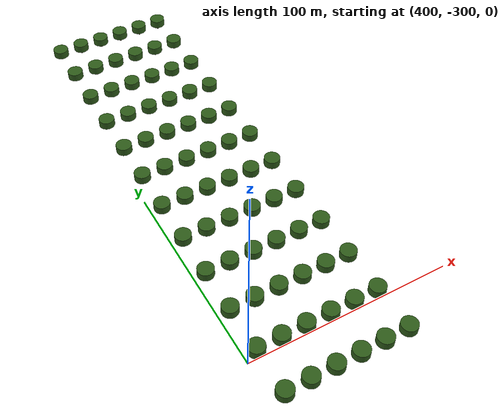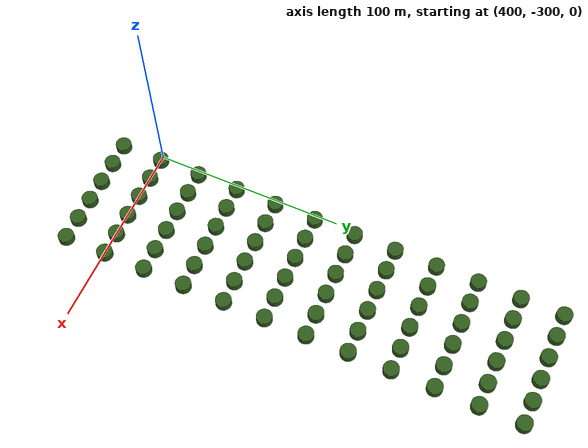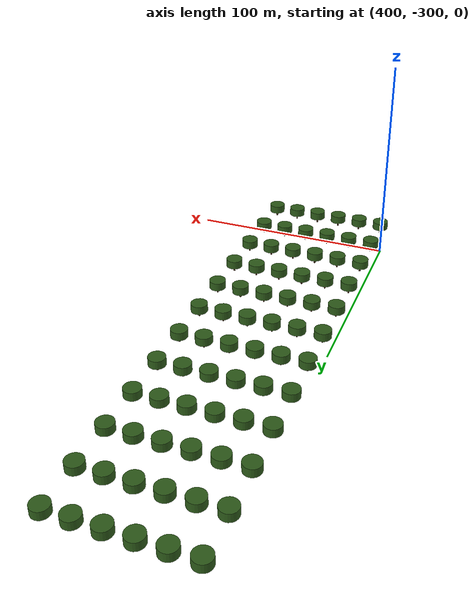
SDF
<sdf version="1.9">
 <world name="agriculture">
  <model name="orchard">
   <static>true</static>
   <link name="link">
    <visual name="trunk0_0_visual">
     <pose>405.0 -320.0 2.34224578950661 0 0 0</pose>
     <geometry><cylinder><radius>0.4</radius><length>4</length></cylinder></geometry>
     <material><ambient>0.3 0.19 0.1 1</ambient><diffuse>0.3 0.19 0.1 1</diffuse></material>
    </visual>
    <collision name="trunk0_0_collision">
     <pose>405.0 -320.0 2.34224578950661 0 0 0</pose>
     <geometry><cylinder><radius>0.4</radius><length>4</length></cylinder></geometry>
    </collision>
    <visual name="canopy0_0_visual">
     <pose>405.0 -320.0 5.34224578950661 0 0 0</pose>
     <geometry><cylinder><radius>4</radius><length>4</length></cylinder></geometry>
     <material><ambient>0.18 0.36 0.10 1</ambient><diffuse>0.18 0.36 0.10 1</diffuse></material>
    </visual>
    <visual name="trunk0_1_visual">
     <pose>405.0 -298.0 2.272279923001846 0 0 0</pose>
     <geometry><cylinder><radius>0.4</radius><length>4</length></cylinder></geometry>
     <material><ambient>0.3 0.19 0.1 1</ambient><diffuse>0.3 0.19 0.1 1</diffuse></material>
    </visual>
    <collision name="trunk0_1_collision">
     <pose>405.0 -298.0 2.272279923001846 0 0 0</pose>
     <geometry><cylinder><radius>0.4</radius><length>4</length></cylinder></geometry>
    </collision>
    <visual name="canopy0_1_visual">
     <pose>405.0 -298.0 5.272279923001846 0 0 0</pose>
     <geometry><cylinder><radius>4</radius><length>4</length></cylinder></geometry>
     <material><ambient>0.18 0.36 0.10 1</ambient><diffuse>0.18 0.36 0.10 1</diffuse></material>
    </visual>
    <visual name="trunk0_2_visual">
     <pose>405.0 -276.0 2.217995107475791 0 0 0</pose>
     <geometry><cylinder><radius>0.4</radius><length>4</length></cylinder></geometry>
     <material><ambient>0.3 0.19 0.1 1</ambient><diffuse>0.3 0.19 0.1 1</diffuse></material>
    </visual>
    <collision name="trunk0_2_collision">
     <pose>405.0 -276.0 2.217995107475791 0 0 0</pose>
     <geometry><cylinder><radius>0.4</radius><length>4</length></cylinder></geometry>
    </collision>
    <visual name="canopy0_2_visual">
     <pose>405.0 -276.0 5.217995107475791 0 0 0</pose>
     <geometry><cylinder><radius>4</radius><length>4</length></cylinder></geometry>
     <material><ambient>0.18 0.36 0.10 1</ambient><diffuse>0.18 0.36 0.10 1</diffuse></material>
    </visual>
    <visual name="trunk0_3_visual">
     <pose>405.0 -254.0 2.1807290892683113 0 0 0</pose>
     <geometry><cylinder><radius>0.4</radius><length>4</length></cylinder></geometry>
     <material><ambient>0.3 0.19 0.1 1</ambient><diffuse>0.3 0.19 0.1 1</diffuse></material>
    </visual>
    <collision name="trunk0_3_collision">
     <pose>405.0 -254.0 2.1807290892683113 0 0 0</pose>
     <geometry><cylinder><radius>0.4</radius><length>4</length></cylinder></geometry>
    </collision>
    <visual name="canopy0_3_visual">
     <pose>405.0 -254.0 5.180729089268311 0 0 0</pose>
     <geometry><cylinder><radius>4</radius><length>4</length></cylinder></geometry>
     <material><ambient>0.18 0.36 0.10 1</ambient><diffuse>0.18 0.36 0.10 1</diffuse></material>
    </visual>
    <visual name="trunk0_4_visual">
     <pose>405.0 -232.0 2.161400218731625 0 0 0</pose>
     <geometry><cylinder><radius>0.4</radius><length>4</length></cylinder></geometry>
     <material><ambient>0.3 0.19 0.1 1</ambient><diffuse>0.3 0.19 0.1 1</diffuse></material>
    </visual>
    <collision name="trunk0_4_collision">
     <pose>405.0 -232.0 2.161400218731625 0 0 0</pose>
     <geometry><cylinder><radius>0.4</radius><length>4</length></cylinder></geometry>
    </collision>
    <visual name="canopy0_4_visual">
     <pose>405.0 -232.0 5.161400218731624 0 0 0</pose>
     <geometry><cylinder><radius>4</radius><length>4</length></cylinder></geometry>
     <material><ambient>0.18 0.36 0.10 1</ambient><diffuse>0.18 0.36 0.10 1</diffuse></material>
    </visual>
    <visual name="trunk0_5_visual">
     <pose>405.0 -210.0 2.160484819227313 0 0 0</pose>
     <geometry><cylinder><radius>0.4</radius><length>4</length></cylinder></geometry>
     <material><ambient>0.3 0.19 0.1 1</ambient><diffuse>0.3 0.19 0.1 1</diffuse></material>
    </visual>
    <collision name="trunk0_5_collision">
     <pose>405.0 -210.0 2.160484819227313 0 0 0</pose>
     <geometry><cylinder><radius>0.4</radius><length>4</length></cylinder></geometry>
    </collision>
    <visual name="canopy0_5_visual">
     <pose>405.0 -210.0 5.160484819227313 0 0 0</pose>
     <geometry><cylinder><radius>4</radius><length>4</length></cylinder></geometry>
     <material><ambient>0.18 0.36 0.10 1</ambient><diffuse>0.18 0.36 0.10 1</diffuse></material>
    </visual>
    <visual name="trunk0_6_visual">
     <pose>405.0 -188.0 2.178005449040313 0 0 0</pose>
     <geometry><cylinder><radius>0.4</radius><length>4</length></cylinder></geometry>
     <material><ambient>0.3 0.19 0.1 1</ambient><diffuse>0.3 0.19 0.1 1</diffuse></material>
    </visual>
    <collision name="trunk0_6_collision">
     <pose>405.0 -188.0 2.178005449040313 0 0 0</pose>
     <geometry><cylinder><radius>0.4</radius><length>4</length></cylinder></geometry>
    </collision>
    <visual name="canopy0_6_visual">
     <pose>405.0 -188.0 5.178005449040313 0 0 0</pose>
     <geometry><cylinder><radius>4</radius><length>4</length></cylinder></geometry>
     <material><ambient>0.18 0.36 0.10 1</ambient><diffuse>0.18 0.36 0.10 1</diffuse></material>
    </visual>
    <visual name="trunk0_7_visual">
     <pose>405.0 -166.0 2.2135303454727624 0 0 0</pose>
     <geometry><cylinder><radius>0.4</radius><length>4</length></cylinder></geometry>
     <material><ambient>0.3 0.19 0.1 1</ambient><diffuse>0.3 0.19 0.1 1</diffuse></material>
    </visual>
    <collision name="trunk0_7_collision">
     <pose>405.0 -166.0 2.2135303454727624 0 0 0</pose>
     <geometry><cylinder><radius>0.4</radius><length>4</length></cylinder></geometry>
    </collision>
    <visual name="canopy0_7_visual">
     <pose>405.0 -166.0 5.213530345472763 0 0 0</pose>
     <geometry><cylinder><radius>4</radius><length>4</length></cylinder></geometry>
     <material><ambient>0.18 0.36 0.10 1</ambient><diffuse>0.18 0.36 0.10 1</diffuse></material>
    </visual>
    <visual name="trunk0_8_visual">
     <pose>405.0 -144.0 2.266184064816949 0 0 0</pose>
     <geometry><cylinder><radius>0.4</radius><length>4</length></cylinder></geometry>
     <material><ambient>0.3 0.19 0.1 1</ambient><diffuse>0.3 0.19 0.1 1</diffuse></material>
    </visual>
    <collision name="trunk0_8_collision">
     <pose>405.0 -144.0 2.266184064816949 0 0 0</pose>
     <geometry><cylinder><radius>0.4</radius><length>4</length></cylinder></geometry>
    </collision>
    <visual name="canopy0_8_visual">
     <pose>405.0 -144.0 5.266184064816949 0 0 0</pose>
     <geometry><cylinder><radius>4</radius><length>4</length></cylinder></geometry>
     <material><ambient>0.18 0.36 0.10 1</ambient><diffuse>0.18 0.36 0.10 1</diffuse></material>
    </visual>
    <visual name="trunk0_9_visual">
     <pose>405.0 -122.0 2.334669056005407 0 0 0</pose>
     <geometry><cylinder><radius>0.4</radius><length>4</length></cylinder></geometry>
     <material><ambient>0.3 0.19 0.1 1</ambient><diffuse>0.3 0.19 0.1 1</diffuse></material>
    </visual>
    <collision name="trunk0_9_collision">
     <pose>405.0 -122.0 2.334669056005407 0 0 0</pose>
     <geometry><cylinder><radius>0.4</radius><length>4</length></cylinder></geometry>
    </collision>
    <visual name="canopy0_9_visual">
     <pose>405.0 -122.0 5.334669056005407 0 0 0</pose>
     <geometry><cylinder><radius>4</radius><length>4</length></cylinder></geometry>
     <material><ambient>0.18 0.36 0.10 1</ambient><diffuse>0.18 0.36 0.10 1</diffuse></material>
    </visual>
    <visual name="trunk0_10_visual">
     <pose>405.0 -100.0 2.417297636296465 0 0 0</pose>
     <geometry><cylinder><radius>0.4</radius><length>4</length></cylinder></geometry>
     <material><ambient>0.3 0.19 0.1 1</ambient><diffuse>0.3 0.19 0.1 1</diffuse></material>
    </visual>
    <collision name="trunk0_10_collision">
     <pose>405.0 -100.0 2.417297636296465 0 0 0</pose>
     <geometry><cylinder><radius>0.4</radius><length>4</length></cylinder></geometry>
    </collision>
    <visual name="canopy0_10_visual">
     <pose>405.0 -100.0 5.417297636296465 0 0 0</pose>
     <geometry><cylinder><radius>4</radius><length>4</length></cylinder></geometry>
     <material><ambient>0.18 0.36 0.10 1</ambient><diffuse>0.18 0.36 0.10 1</diffuse></material>
    </visual>
    <visual name="trunk0_11_visual">
     <pose>405.0 -78.0 2.5120335810151095 0 0 0</pose>
     <geometry><cylinder><radius>0.4</radius><length>4</length></cylinder></geometry>
     <material><ambient>0.3 0.19 0.1 1</ambient><diffuse>0.3 0.19 0.1 1</diffuse></material>
    </visual>
    <collision name="trunk0_11_collision">
     <pose>405.0 -78.0 2.5120335810151095 0 0 0</pose>
     <geometry><cylinder><radius>0.4</radius><length>4</length></cylinder></geometry>
    </collision>
    <visual name="canopy0_11_visual">
     <pose>405.0 -78.0 5.5120335810151095 0 0 0</pose>
     <geometry><cylinder><radius>4</radius><length>4</length></cylinder></geometry>
     <material><ambient>0.18 0.36 0.10 1</ambient><diffuse>0.18 0.36 0.10 1</diffuse></material>
    </visual>
    <visual name="trunk1_0_visual">
     <pose>417.0 -320.0 2.2912812497025055 0 0 0</pose>
     <geometry><cylinder><radius>0.4</radius><length>4</length></cylinder></geometry>
     <material><ambient>0.3 0.19 0.1 1</ambient><diffuse>0.3 0.19 0.1 1</diffuse></material>
    </visual>
    <collision name="trunk1_0_collision">
     <pose>417.0 -320.0 2.2912812497025055 0 0 0</pose>
     <geometry><cylinder><radius>0.4</radius><length>4</length></cylinder></geometry>
    </collision>
    <visual name="canopy1_0_visual">
     <pose>417.0 -320.0 5.2912812497025055 0 0 0</pose>
     <geometry><cylinder><radius>4</radius><length>4</length></cylinder></geometry>
     <material><ambient>0.18 0.36 0.10 1</ambient><diffuse>0.18 0.36 0.10 1</diffuse></material>
    </visual>
    <visual name="trunk1_1_visual">
     <pose>417.0 -298.0 2.2213153831977417 0 0 0</pose>
     <geometry><cylinder><radius>0.4</radius><length>4</length></cylinder></geometry>
     <material><ambient>0.3 0.19 0.1 1</ambient><diffuse>0.3 0.19 0.1 1</diffuse></material>
    </visual>
    <collision name="trunk1_1_collision">
     <pose>417.0 -298.0 2.2213153831977417 0 0 0</pose>
     <geometry><cylinder><radius>0.4</radius><length>4</length></cylinder></geometry>
    </collision>
    <visual name="canopy1_1_visual">
     <pose>417.0 -298.0 5.221315383197742 0 0 0</pose>
     <geometry><cylinder><radius>4</radius><length>4</length></cylinder></geometry>
     <material><ambient>0.18 0.36 0.10 1</ambient><diffuse>0.18 0.36 0.10 1</diffuse></material>
    </visual>
    <visual name="trunk1_2_visual">
     <pose>417.0 -276.0 2.1670305676716866 0 0 0</pose>
     <geometry><cylinder><radius>0.4</radius><length>4</length></cylinder></geometry>
     <material><ambient>0.3 0.19 0.1 1</ambient><diffuse>0.3 0.19 0.1 1</diffuse></material>
    </visual>
    <collision name="trunk1_2_collision">
     <pose>417.0 -276.0 2.1670305676716866 0 0 0</pose>
     <geometry><cylinder><radius>0.4</radius><length>4</length></cylinder></geometry>
    </collision>
    <visual name="canopy1_2_visual">
     <pose>417.0 -276.0 5.167030567671686 0 0 0</pose>
     <geometry><cylinder><radius>4</radius><length>4</length></cylinder></geometry>
     <material><ambient>0.18 0.36 0.10 1</ambient><diffuse>0.18 0.36 0.10 1</diffuse></material>
    </visual>
    <visual name="trunk1_3_visual">
     <pose>417.0 -254.0 2.129764549464207 0 0 0</pose>
     <geometry><cylinder><radius>0.4</radius><length>4</length></cylinder></geometry>
     <material><ambient>0.3 0.19 0.1 1</ambient><diffuse>0.3 0.19 0.1 1</diffuse></material>
    </visual>
    <collision name="trunk1_3_collision">
     <pose>417.0 -254.0 2.129764549464207 0 0 0</pose>
     <geometry><cylinder><radius>0.4</radius><length>4</length></cylinder></geometry>
    </collision>
    <visual name="canopy1_3_visual">
     <pose>417.0 -254.0 5.129764549464207 0 0 0</pose>
     <geometry><cylinder><radius>4</radius><length>4</length></cylinder></geometry>
     <material><ambient>0.18 0.36 0.10 1</ambient><diffuse>0.18 0.36 0.10 1</diffuse></material>
    </visual>
    <visual name="trunk1_4_visual">
     <pose>417.0 -232.0 2.1104356789275203 0 0 0</pose>
     <geometry><cylinder><radius>0.4</radius><length>4</length></cylinder></geometry>
     <material><ambient>0.3 0.19 0.1 1</ambient><diffuse>0.3 0.19 0.1 1</diffuse></material>
    </visual>
    <collision name="trunk1_4_collision">
     <pose>417.0 -232.0 2.1104356789275203 0 0 0</pose>
     <geometry><cylinder><radius>0.4</radius><length>4</length></cylinder></geometry>
    </collision>
    <visual name="canopy1_4_visual">
     <pose>417.0 -232.0 5.11043567892752 0 0 0</pose>
     <geometry><cylinder><radius>4</radius><length>4</length></cylinder></geometry>
     <material><ambient>0.18 0.36 0.10 1</ambient><diffuse>0.18 0.36 0.10 1</diffuse></material>
    </visual>
    <visual name="trunk1_5_visual">
     <pose>417.0 -210.0 2.1095202794232084 0 0 0</pose>
     <geometry><cylinder><radius>0.4</radius><length>4</length></cylinder></geometry>
     <material><ambient>0.3 0.19 0.1 1</ambient><diffuse>0.3 0.19 0.1 1</diffuse></material>
    </visual>
    <collision name="trunk1_5_collision">
     <pose>417.0 -210.0 2.1095202794232084 0 0 0</pose>
     <geometry><cylinder><radius>0.4</radius><length>4</length></cylinder></geometry>
    </collision>
    <visual name="canopy1_5_visual">
     <pose>417.0 -210.0 5.109520279423208 0 0 0</pose>
     <geometry><cylinder><radius>4</radius><length>4</length></cylinder></geometry>
     <material><ambient>0.18 0.36 0.10 1</ambient><diffuse>0.18 0.36 0.10 1</diffuse></material>
    </visual>
    <visual name="trunk1_6_visual">
     <pose>417.0 -188.0 2.1270409092362086 0 0 0</pose>
     <geometry><cylinder><radius>0.4</radius><length>4</length></cylinder></geometry>
     <material><ambient>0.3 0.19 0.1 1</ambient><diffuse>0.3 0.19 0.1 1</diffuse></material>
    </visual>
    <collision name="trunk1_6_collision">
     <pose>417.0 -188.0 2.1270409092362086 0 0 0</pose>
     <geometry><cylinder><radius>0.4</radius><length>4</length></cylinder></geometry>
    </collision>
    <visual name="canopy1_6_visual">
     <pose>417.0 -188.0 5.127040909236208 0 0 0</pose>
     <geometry><cylinder><radius>4</radius><length>4</length></cylinder></geometry>
     <material><ambient>0.18 0.36 0.10 1</ambient><diffuse>0.18 0.36 0.10 1</diffuse></material>
    </visual>
    <visual name="trunk1_7_visual">
     <pose>417.0 -166.0 2.1625658056686583 0 0 0</pose>
     <geometry><cylinder><radius>0.4</radius><length>4</length></cylinder></geometry>
     <material><ambient>0.3 0.19 0.1 1</ambient><diffuse>0.3 0.19 0.1 1</diffuse></material>
    </visual>
    <collision name="trunk1_7_collision">
     <pose>417.0 -166.0 2.1625658056686583 0 0 0</pose>
     <geometry><cylinder><radius>0.4</radius><length>4</length></cylinder></geometry>
    </collision>
    <visual name="canopy1_7_visual">
     <pose>417.0 -166.0 5.162565805668658 0 0 0</pose>
     <geometry><cylinder><radius>4</radius><length>4</length></cylinder></geometry>
     <material><ambient>0.18 0.36 0.10 1</ambient><diffuse>0.18 0.36 0.10 1</diffuse></material>
    </visual>
    <visual name="trunk1_8_visual">
     <pose>417.0 -144.0 2.215219525012845 0 0 0</pose>
     <geometry><cylinder><radius>0.4</radius><length>4</length></cylinder></geometry>
     <material><ambient>0.3 0.19 0.1 1</ambient><diffuse>0.3 0.19 0.1 1</diffuse></material>
    </visual>
    <collision name="trunk1_8_collision">
     <pose>417.0 -144.0 2.215219525012845 0 0 0</pose>
     <geometry><cylinder><radius>0.4</radius><length>4</length></cylinder></geometry>
    </collision>
    <visual name="canopy1_8_visual">
     <pose>417.0 -144.0 5.215219525012845 0 0 0</pose>
     <geometry><cylinder><radius>4</radius><length>4</length></cylinder></geometry>
     <material><ambient>0.18 0.36 0.10 1</ambient><diffuse>0.18 0.36 0.10 1</diffuse></material>
    </visual>
    <visual name="trunk1_9_visual">
     <pose>417.0 -122.0 2.2837045162013023 0 0 0</pose>
     <geometry><cylinder><radius>0.4</radius><length>4</length></cylinder></geometry>
     <material><ambient>0.3 0.19 0.1 1</ambient><diffuse>0.3 0.19 0.1 1</diffuse></material>
    </visual>
    <collision name="trunk1_9_collision">
     <pose>417.0 -122.0 2.2837045162013023 0 0 0</pose>
     <geometry><cylinder><radius>0.4</radius><length>4</length></cylinder></geometry>
    </collision>
    <visual name="canopy1_9_visual">
     <pose>417.0 -122.0 5.283704516201302 0 0 0</pose>
     <geometry><cylinder><radius>4</radius><length>4</length></cylinder></geometry>
     <material><ambient>0.18 0.36 0.10 1</ambient><diffuse>0.18 0.36 0.10 1</diffuse></material>
    </visual>
    <visual name="trunk1_10_visual">
     <pose>417.0 -100.0 2.3663330964923603 0 0 0</pose>
     <geometry><cylinder><radius>0.4</radius><length>4</length></cylinder></geometry>
     <material><ambient>0.3 0.19 0.1 1</ambient><diffuse>0.3 0.19 0.1 1</diffuse></material>
    </visual>
    <collision name="trunk1_10_collision">
     <pose>417.0 -100.0 2.3663330964923603 0 0 0</pose>
     <geometry><cylinder><radius>0.4</radius><length>4</length></cylinder></geometry>
    </collision>
    <visual name="canopy1_10_visual">
     <pose>417.0 -100.0 5.36633309649236 0 0 0</pose>
     <geometry><cylinder><radius>4</radius><length>4</length></cylinder></geometry>
     <material><ambient>0.18 0.36 0.10 1</ambient><diffuse>0.18 0.36 0.10 1</diffuse></material>
    </visual>
    <visual name="trunk1_11_visual">
     <pose>417.0 -78.0 2.461069041211005 0 0 0</pose>
     <geometry><cylinder><radius>0.4</radius><length>4</length></cylinder></geometry>
     <material><ambient>0.3 0.19 0.1 1</ambient><diffuse>0.3 0.19 0.1 1</diffuse></material>
    </visual>
    <collision name="trunk1_11_collision">
     <pose>417.0 -78.0 2.461069041211005 0 0 0</pose>
     <geometry><cylinder><radius>0.4</radius><length>4</length></cylinder></geometry>
    </collision>
    <visual name="canopy1_11_visual">
     <pose>417.0 -78.0 5.461069041211005 0 0 0</pose>
     <geometry><cylinder><radius>4</radius><length>4</length></cylinder></geometry>
     <material><ambient>0.18 0.36 0.10 1</ambient><diffuse>0.18 0.36 0.10 1</diffuse></material>
    </visual>
    <visual name="trunk2_0_visual">
     <pose>429.0 -320.0 2.249555577391446 0 0 0</pose>
     <geometry><cylinder><radius>0.4</radius><length>4</length></cylinder></geometry>
     <material><ambient>0.3 0.19 0.1 1</ambient><diffuse>0.3 0.19 0.1 1</diffuse></material>
    </visual>
    <collision name="trunk2_0_collision">
     <pose>429.0 -320.0 2.249555577391446 0 0 0</pose>
     <geometry><cylinder><radius>0.4</radius><length>4</length></cylinder></geometry>
    </collision>
    <visual name="canopy2_0_visual">
     <pose>429.0 -320.0 5.249555577391447 0 0 0</pose>
     <geometry><cylinder><radius>4</radius><length>4</length></cylinder></geometry>
     <material><ambient>0.18 0.36 0.10 1</ambient><diffuse>0.18 0.36 0.10 1</diffuse></material>
    </visual>
    <visual name="trunk2_1_visual">
     <pose>429.0 -298.0 2.179589710886682 0 0 0</pose>
     <geometry><cylinder><radius>0.4</radius><length>4</length></cylinder></geometry>
     <material><ambient>0.3 0.19 0.1 1</ambient><diffuse>0.3 0.19 0.1 1</diffuse></material>
    </visual>
    <collision name="trunk2_1_collision">
     <pose>429.0 -298.0 2.179589710886682 0 0 0</pose>
     <geometry><cylinder><radius>0.4</radius><length>4</length></cylinder></geometry>
    </collision>
    <visual name="canopy2_1_visual">
     <pose>429.0 -298.0 5.179589710886682 0 0 0</pose>
     <geometry><cylinder><radius>4</radius><length>4</length></cylinder></geometry>
     <material><ambient>0.18 0.36 0.10 1</ambient><diffuse>0.18 0.36 0.10 1</diffuse></material>
    </visual>
    <visual name="trunk2_2_visual">
     <pose>429.0 -276.0 2.1253048953606273 0 0 0</pose>
     <geometry><cylinder><radius>0.4</radius><length>4</length></cylinder></geometry>
     <material><ambient>0.3 0.19 0.1 1</ambient><diffuse>0.3 0.19 0.1 1</diffuse></material>
    </visual>
    <collision name="trunk2_2_collision">
     <pose>429.0 -276.0 2.1253048953606273 0 0 0</pose>
     <geometry><cylinder><radius>0.4</radius><length>4</length></cylinder></geometry>
    </collision>
    <visual name="canopy2_2_visual">
     <pose>429.0 -276.0 5.125304895360627 0 0 0</pose>
     <geometry><cylinder><radius>4</radius><length>4</length></cylinder></geometry>
     <material><ambient>0.18 0.36 0.10 1</ambient><diffuse>0.18 0.36 0.10 1</diffuse></material>
    </visual>
    <visual name="trunk2_3_visual">
     <pose>429.0 -254.0 2.0880388771531475 0 0 0</pose>
     <geometry><cylinder><radius>0.4</radius><length>4</length></cylinder></geometry>
     <material><ambient>0.3 0.19 0.1 1</ambient><diffuse>0.3 0.19 0.1 1</diffuse></material>
    </visual>
    <collision name="trunk2_3_collision">
     <pose>429.0 -254.0 2.0880388771531475 0 0 0</pose>
     <geometry><cylinder><radius>0.4</radius><length>4</length></cylinder></geometry>
    </collision>
    <visual name="canopy2_3_visual">
     <pose>429.0 -254.0 5.0880388771531475 0 0 0</pose>
     <geometry><cylinder><radius>4</radius><length>4</length></cylinder></geometry>
     <material><ambient>0.18 0.36 0.10 1</ambient><diffuse>0.18 0.36 0.10 1</diffuse></material>
    </visual>
    <visual name="trunk2_4_visual">
     <pose>429.0 -232.0 2.068710006616461 0 0 0</pose>
     <geometry><cylinder><radius>0.4</radius><length>4</length></cylinder></geometry>
     <material><ambient>0.3 0.19 0.1 1</ambient><diffuse>0.3 0.19 0.1 1</diffuse></material>
    </visual>
    <collision name="trunk2_4_collision">
     <pose>429.0 -232.0 2.068710006616461 0 0 0</pose>
     <geometry><cylinder><radius>0.4</radius><length>4</length></cylinder></geometry>
    </collision>
    <visual name="canopy2_4_visual">
     <pose>429.0 -232.0 5.0687100066164605 0 0 0</pose>
     <geometry><cylinder><radius>4</radius><length>4</length></cylinder></geometry>
     <material><ambient>0.18 0.36 0.10 1</ambient><diffuse>0.18 0.36 0.10 1</diffuse></material>
    </visual>
    <visual name="trunk2_5_visual">
     <pose>429.0 -210.0 2.067794607112149 0 0 0</pose>
     <geometry><cylinder><radius>0.4</radius><length>4</length></cylinder></geometry>
     <material><ambient>0.3 0.19 0.1 1</ambient><diffuse>0.3 0.19 0.1 1</diffuse></material>
    </visual>
    <collision name="trunk2_5_collision">
     <pose>429.0 -210.0 2.067794607112149 0 0 0</pose>
     <geometry><cylinder><radius>0.4</radius><length>4</length></cylinder></geometry>
    </collision>
    <visual name="canopy2_5_visual">
     <pose>429.0 -210.0 5.067794607112149 0 0 0</pose>
     <geometry><cylinder><radius>4</radius><length>4</length></cylinder></geometry>
     <material><ambient>0.18 0.36 0.10 1</ambient><diffuse>0.18 0.36 0.10 1</diffuse></material>
    </visual>
    <visual name="trunk2_6_visual">
     <pose>429.0 -188.0 2.0853152369251493 0 0 0</pose>
     <geometry><cylinder><radius>0.4</radius><length>4</length></cylinder></geometry>
     <material><ambient>0.3 0.19 0.1 1</ambient><diffuse>0.3 0.19 0.1 1</diffuse></material>
    </visual>
    <collision name="trunk2_6_collision">
     <pose>429.0 -188.0 2.0853152369251493 0 0 0</pose>
     <geometry><cylinder><radius>0.4</radius><length>4</length></cylinder></geometry>
    </collision>
    <visual name="canopy2_6_visual">
     <pose>429.0 -188.0 5.085315236925149 0 0 0</pose>
     <geometry><cylinder><radius>4</radius><length>4</length></cylinder></geometry>
     <material><ambient>0.18 0.36 0.10 1</ambient><diffuse>0.18 0.36 0.10 1</diffuse></material>
    </visual>
    <visual name="trunk2_7_visual">
     <pose>429.0 -166.0 2.1208401333575986 0 0 0</pose>
     <geometry><cylinder><radius>0.4</radius><length>4</length></cylinder></geometry>
     <material><ambient>0.3 0.19 0.1 1</ambient><diffuse>0.3 0.19 0.1 1</diffuse></material>
    </visual>
    <collision name="trunk2_7_collision">
     <pose>429.0 -166.0 2.1208401333575986 0 0 0</pose>
     <geometry><cylinder><radius>0.4</radius><length>4</length></cylinder></geometry>
    </collision>
    <visual name="canopy2_7_visual">
     <pose>429.0 -166.0 5.120840133357599 0 0 0</pose>
     <geometry><cylinder><radius>4</radius><length>4</length></cylinder></geometry>
     <material><ambient>0.18 0.36 0.10 1</ambient><diffuse>0.18 0.36 0.10 1</diffuse></material>
    </visual>
    <visual name="trunk2_8_visual">
     <pose>429.0 -144.0 2.1734938527017853 0 0 0</pose>
     <geometry><cylinder><radius>0.4</radius><length>4</length></cylinder></geometry>
     <material><ambient>0.3 0.19 0.1 1</ambient><diffuse>0.3 0.19 0.1 1</diffuse></material>
    </visual>
    <collision name="trunk2_8_collision">
     <pose>429.0 -144.0 2.1734938527017853 0 0 0</pose>
     <geometry><cylinder><radius>0.4</radius><length>4</length></cylinder></geometry>
    </collision>
    <visual name="canopy2_8_visual">
     <pose>429.0 -144.0 5.173493852701785 0 0 0</pose>
     <geometry><cylinder><radius>4</radius><length>4</length></cylinder></geometry>
     <material><ambient>0.18 0.36 0.10 1</ambient><diffuse>0.18 0.36 0.10 1</diffuse></material>
    </visual>
    <visual name="trunk2_9_visual">
     <pose>429.0 -122.0 2.241978843890243 0 0 0</pose>
     <geometry><cylinder><radius>0.4</radius><length>4</length></cylinder></geometry>
     <material><ambient>0.3 0.19 0.1 1</ambient><diffuse>0.3 0.19 0.1 1</diffuse></material>
    </visual>
    <collision name="trunk2_9_collision">
     <pose>429.0 -122.0 2.241978843890243 0 0 0</pose>
     <geometry><cylinder><radius>0.4</radius><length>4</length></cylinder></geometry>
    </collision>
    <visual name="canopy2_9_visual">
     <pose>429.0 -122.0 5.2419788438902435 0 0 0</pose>
     <geometry><cylinder><radius>4</radius><length>4</length></cylinder></geometry>
     <material><ambient>0.18 0.36 0.10 1</ambient><diffuse>0.18 0.36 0.10 1</diffuse></material>
    </visual>
    <visual name="trunk2_10_visual">
     <pose>429.0 -100.0 2.324607424181301 0 0 0</pose>
     <geometry><cylinder><radius>0.4</radius><length>4</length></cylinder></geometry>
     <material><ambient>0.3 0.19 0.1 1</ambient><diffuse>0.3 0.19 0.1 1</diffuse></material>
    </visual>
    <collision name="trunk2_10_collision">
     <pose>429.0 -100.0 2.324607424181301 0 0 0</pose>
     <geometry><cylinder><radius>0.4</radius><length>4</length></cylinder></geometry>
    </collision>
    <visual name="canopy2_10_visual">
     <pose>429.0 -100.0 5.324607424181301 0 0 0</pose>
     <geometry><cylinder><radius>4</radius><length>4</length></cylinder></geometry>
     <material><ambient>0.18 0.36 0.10 1</ambient><diffuse>0.18 0.36 0.10 1</diffuse></material>
    </visual>
    <visual name="trunk2_11_visual">
     <pose>429.0 -78.0 2.4193433688999457 0 0 0</pose>
     <geometry><cylinder><radius>0.4</radius><length>4</length></cylinder></geometry>
     <material><ambient>0.3 0.19 0.1 1</ambient><diffuse>0.3 0.19 0.1 1</diffuse></material>
    </visual>
    <collision name="trunk2_11_collision">
     <pose>429.0 -78.0 2.4193433688999457 0 0 0</pose>
     <geometry><cylinder><radius>0.4</radius><length>4</length></cylinder></geometry>
    </collision>
    <visual name="canopy2_11_visual">
     <pose>429.0 -78.0 5.419343368899946 0 0 0</pose>
     <geometry><cylinder><radius>4</radius><length>4</length></cylinder></geometry>
     <material><ambient>0.18 0.36 0.10 1</ambient><diffuse>0.18 0.36 0.10 1</diffuse></material>
    </visual>
    <visual name="trunk3_0_visual">
     <pose>441.0 -320.0 2.217668901581094 0 0 0</pose>
     <geometry><cylinder><radius>0.4</radius><length>4</length></cylinder></geometry>
     <material><ambient>0.3 0.19 0.1 1</ambient><diffuse>0.3 0.19 0.1 1</diffuse></material>
    </visual>
    <collision name="trunk3_0_collision">
     <pose>441.0 -320.0 2.217668901581094 0 0 0</pose>
     <geometry><cylinder><radius>0.4</radius><length>4</length></cylinder></geometry>
    </collision>
    <visual name="canopy3_0_visual">
     <pose>441.0 -320.0 5.217668901581094 0 0 0</pose>
     <geometry><cylinder><radius>4</radius><length>4</length></cylinder></geometry>
     <material><ambient>0.18 0.36 0.10 1</ambient><diffuse>0.18 0.36 0.10 1</diffuse></material>
    </visual>
    <visual name="trunk3_1_visual">
     <pose>441.0 -298.0 2.1477030350763298 0 0 0</pose>
     <geometry><cylinder><radius>0.4</radius><length>4</length></cylinder></geometry>
     <material><ambient>0.3 0.19 0.1 1</ambient><diffuse>0.3 0.19 0.1 1</diffuse></material>
    </visual>
    <collision name="trunk3_1_collision">
     <pose>441.0 -298.0 2.1477030350763298 0 0 0</pose>
     <geometry><cylinder><radius>0.4</radius><length>4</length></cylinder></geometry>
    </collision>
    <visual name="canopy3_1_visual">
     <pose>441.0 -298.0 5.14770303507633 0 0 0</pose>
     <geometry><cylinder><radius>4</radius><length>4</length></cylinder></geometry>
     <material><ambient>0.18 0.36 0.10 1</ambient><diffuse>0.18 0.36 0.10 1</diffuse></material>
    </visual>
    <visual name="trunk3_2_visual">
     <pose>441.0 -276.0 2.093418219550275 0 0 0</pose>
     <geometry><cylinder><radius>0.4</radius><length>4</length></cylinder></geometry>
     <material><ambient>0.3 0.19 0.1 1</ambient><diffuse>0.3 0.19 0.1 1</diffuse></material>
    </visual>
    <collision name="trunk3_2_collision">
     <pose>441.0 -276.0 2.093418219550275 0 0 0</pose>
     <geometry><cylinder><radius>0.4</radius><length>4</length></cylinder></geometry>
    </collision>
    <visual name="canopy3_2_visual">
     <pose>441.0 -276.0 5.093418219550275 0 0 0</pose>
     <geometry><cylinder><radius>4</radius><length>4</length></cylinder></geometry>
     <material><ambient>0.18 0.36 0.10 1</ambient><diffuse>0.18 0.36 0.10 1</diffuse></material>
    </visual>
    <visual name="trunk3_3_visual">
     <pose>441.0 -254.0 2.0561522013427953 0 0 0</pose>
     <geometry><cylinder><radius>0.4</radius><length>4</length></cylinder></geometry>
     <material><ambient>0.3 0.19 0.1 1</ambient><diffuse>0.3 0.19 0.1 1</diffuse></material>
    </visual>
    <collision name="trunk3_3_collision">
     <pose>441.0 -254.0 2.0561522013427953 0 0 0</pose>
     <geometry><cylinder><radius>0.4</radius><length>4</length></cylinder></geometry>
    </collision>
    <visual name="canopy3_3_visual">
     <pose>441.0 -254.0 5.056152201342795 0 0 0</pose>
     <geometry><cylinder><radius>4</radius><length>4</length></cylinder></geometry>
     <material><ambient>0.18 0.36 0.10 1</ambient><diffuse>0.18 0.36 0.10 1</diffuse></material>
    </visual>
    <visual name="trunk3_4_visual">
     <pose>441.0 -232.0 2.036823330806109 0 0 0</pose>
     <geometry><cylinder><radius>0.4</radius><length>4</length></cylinder></geometry>
     <material><ambient>0.3 0.19 0.1 1</ambient><diffuse>0.3 0.19 0.1 1</diffuse></material>
    </visual>
    <collision name="trunk3_4_collision">
     <pose>441.0 -232.0 2.036823330806109 0 0 0</pose>
     <geometry><cylinder><radius>0.4</radius><length>4</length></cylinder></geometry>
    </collision>
    <visual name="canopy3_4_visual">
     <pose>441.0 -232.0 5.036823330806109 0 0 0</pose>
     <geometry><cylinder><radius>4</radius><length>4</length></cylinder></geometry>
     <material><ambient>0.18 0.36 0.10 1</ambient><diffuse>0.18 0.36 0.10 1</diffuse></material>
    </visual>
    <visual name="trunk3_5_visual">
     <pose>441.0 -210.0 2.035907931301797 0 0 0</pose>
     <geometry><cylinder><radius>0.4</radius><length>4</length></cylinder></geometry>
     <material><ambient>0.3 0.19 0.1 1</ambient><diffuse>0.3 0.19 0.1 1</diffuse></material>
    </visual>
    <collision name="trunk3_5_collision">
     <pose>441.0 -210.0 2.035907931301797 0 0 0</pose>
     <geometry><cylinder><radius>0.4</radius><length>4</length></cylinder></geometry>
    </collision>
    <visual name="canopy3_5_visual">
     <pose>441.0 -210.0 5.0359079313017965 0 0 0</pose>
     <geometry><cylinder><radius>4</radius><length>4</length></cylinder></geometry>
     <material><ambient>0.18 0.36 0.10 1</ambient><diffuse>0.18 0.36 0.10 1</diffuse></material>
    </visual>
    <visual name="trunk3_6_visual">
     <pose>441.0 -188.0 2.053428561114797 0 0 0</pose>
     <geometry><cylinder><radius>0.4</radius><length>4</length></cylinder></geometry>
     <material><ambient>0.3 0.19 0.1 1</ambient><diffuse>0.3 0.19 0.1 1</diffuse></material>
    </visual>
    <collision name="trunk3_6_collision">
     <pose>441.0 -188.0 2.053428561114797 0 0 0</pose>
     <geometry><cylinder><radius>0.4</radius><length>4</length></cylinder></geometry>
    </collision>
    <visual name="canopy3_6_visual">
     <pose>441.0 -188.0 5.053428561114797 0 0 0</pose>
     <geometry><cylinder><radius>4</radius><length>4</length></cylinder></geometry>
     <material><ambient>0.18 0.36 0.10 1</ambient><diffuse>0.18 0.36 0.10 1</diffuse></material>
    </visual>
    <visual name="trunk3_7_visual">
     <pose>441.0 -166.0 2.0889534575472464 0 0 0</pose>
     <geometry><cylinder><radius>0.4</radius><length>4</length></cylinder></geometry>
     <material><ambient>0.3 0.19 0.1 1</ambient><diffuse>0.3 0.19 0.1 1</diffuse></material>
    </visual>
    <collision name="trunk3_7_collision">
     <pose>441.0 -166.0 2.0889534575472464 0 0 0</pose>
     <geometry><cylinder><radius>0.4</radius><length>4</length></cylinder></geometry>
    </collision>
    <visual name="canopy3_7_visual">
     <pose>441.0 -166.0 5.088953457547246 0 0 0</pose>
     <geometry><cylinder><radius>4</radius><length>4</length></cylinder></geometry>
     <material><ambient>0.18 0.36 0.10 1</ambient><diffuse>0.18 0.36 0.10 1</diffuse></material>
    </visual>
    <visual name="trunk3_8_visual">
     <pose>441.0 -144.0 2.141607176891433 0 0 0</pose>
     <geometry><cylinder><radius>0.4</radius><length>4</length></cylinder></geometry>
     <material><ambient>0.3 0.19 0.1 1</ambient><diffuse>0.3 0.19 0.1 1</diffuse></material>
    </visual>
    <collision name="trunk3_8_collision">
     <pose>441.0 -144.0 2.141607176891433 0 0 0</pose>
     <geometry><cylinder><radius>0.4</radius><length>4</length></cylinder></geometry>
    </collision>
    <visual name="canopy3_8_visual">
     <pose>441.0 -144.0 5.1416071768914335 0 0 0</pose>
     <geometry><cylinder><radius>4</radius><length>4</length></cylinder></geometry>
     <material><ambient>0.18 0.36 0.10 1</ambient><diffuse>0.18 0.36 0.10 1</diffuse></material>
    </visual>
    <visual name="trunk3_9_visual">
     <pose>441.0 -122.0 2.210092168079891 0 0 0</pose>
     <geometry><cylinder><radius>0.4</radius><length>4</length></cylinder></geometry>
     <material><ambient>0.3 0.19 0.1 1</ambient><diffuse>0.3 0.19 0.1 1</diffuse></material>
    </visual>
    <collision name="trunk3_9_collision">
     <pose>441.0 -122.0 2.210092168079891 0 0 0</pose>
     <geometry><cylinder><radius>0.4</radius><length>4</length></cylinder></geometry>
    </collision>
    <visual name="canopy3_9_visual">
     <pose>441.0 -122.0 5.210092168079891 0 0 0</pose>
     <geometry><cylinder><radius>4</radius><length>4</length></cylinder></geometry>
     <material><ambient>0.18 0.36 0.10 1</ambient><diffuse>0.18 0.36 0.10 1</diffuse></material>
    </visual>
    <visual name="trunk3_10_visual">
     <pose>441.0 -100.0 2.2927207483709484 0 0 0</pose>
     <geometry><cylinder><radius>0.4</radius><length>4</length></cylinder></geometry>
     <material><ambient>0.3 0.19 0.1 1</ambient><diffuse>0.3 0.19 0.1 1</diffuse></material>
    </visual>
    <collision name="trunk3_10_collision">
     <pose>441.0 -100.0 2.2927207483709484 0 0 0</pose>
     <geometry><cylinder><radius>0.4</radius><length>4</length></cylinder></geometry>
    </collision>
    <visual name="canopy3_10_visual">
     <pose>441.0 -100.0 5.292720748370948 0 0 0</pose>
     <geometry><cylinder><radius>4</radius><length>4</length></cylinder></geometry>
     <material><ambient>0.18 0.36 0.10 1</ambient><diffuse>0.18 0.36 0.10 1</diffuse></material>
    </visual>
    <visual name="trunk3_11_visual">
     <pose>441.0 -78.0 2.3874566930895935 0 0 0</pose>
     <geometry><cylinder><radius>0.4</radius><length>4</length></cylinder></geometry>
     <material><ambient>0.3 0.19 0.1 1</ambient><diffuse>0.3 0.19 0.1 1</diffuse></material>
    </visual>
    <collision name="trunk3_11_collision">
     <pose>441.0 -78.0 2.3874566930895935 0 0 0</pose>
     <geometry><cylinder><radius>0.4</radius><length>4</length></cylinder></geometry>
    </collision>
    <visual name="canopy3_11_visual">
     <pose>441.0 -78.0 5.387456693089593 0 0 0</pose>
     <geometry><cylinder><radius>4</radius><length>4</length></cylinder></geometry>
     <material><ambient>0.18 0.36 0.10 1</ambient><diffuse>0.18 0.36 0.10 1</diffuse></material>
    </visual>
    <visual name="trunk4_0_visual">
     <pose>453.0 -320.0 2.1960798396657735 0 0 0</pose>
     <geometry><cylinder><radius>0.4</radius><length>4</length></cylinder></geometry>
     <material><ambient>0.3 0.19 0.1 1</ambient><diffuse>0.3 0.19 0.1 1</diffuse></material>
    </visual>
    <collision name="trunk4_0_collision">
     <pose>453.0 -320.0 2.1960798396657735 0 0 0</pose>
     <geometry><cylinder><radius>0.4</radius><length>4</length></cylinder></geometry>
    </collision>
    <visual name="canopy4_0_visual">
     <pose>453.0 -320.0 5.1960798396657735 0 0 0</pose>
     <geometry><cylinder><radius>4</radius><length>4</length></cylinder></geometry>
     <material><ambient>0.18 0.36 0.10 1</ambient><diffuse>0.18 0.36 0.10 1</diffuse></material>
    </visual>
    <visual name="trunk4_1_visual">
     <pose>453.0 -298.0 2.1261139731610093 0 0 0</pose>
     <geometry><cylinder><radius>0.4</radius><length>4</length></cylinder></geometry>
     <material><ambient>0.3 0.19 0.1 1</ambient><diffuse>0.3 0.19 0.1 1</diffuse></material>
    </visual>
    <collision name="trunk4_1_collision">
     <pose>453.0 -298.0 2.1261139731610093 0 0 0</pose>
     <geometry><cylinder><radius>0.4</radius><length>4</length></cylinder></geometry>
    </collision>
    <visual name="canopy4_1_visual">
     <pose>453.0 -298.0 5.12611397316101 0 0 0</pose>
     <geometry><cylinder><radius>4</radius><length>4</length></cylinder></geometry>
     <material><ambient>0.18 0.36 0.10 1</ambient><diffuse>0.18 0.36 0.10 1</diffuse></material>
    </visual>
    <visual name="trunk4_2_visual">
     <pose>453.0 -276.0 2.071829157634954 0 0 0</pose>
     <geometry><cylinder><radius>0.4</radius><length>4</length></cylinder></geometry>
     <material><ambient>0.3 0.19 0.1 1</ambient><diffuse>0.3 0.19 0.1 1</diffuse></material>
    </visual>
    <collision name="trunk4_2_collision">
     <pose>453.0 -276.0 2.071829157634954 0 0 0</pose>
     <geometry><cylinder><radius>0.4</radius><length>4</length></cylinder></geometry>
    </collision>
    <visual name="canopy4_2_visual">
     <pose>453.0 -276.0 5.071829157634954 0 0 0</pose>
     <geometry><cylinder><radius>4</radius><length>4</length></cylinder></geometry>
     <material><ambient>0.18 0.36 0.10 1</ambient><diffuse>0.18 0.36 0.10 1</diffuse></material>
    </visual>
    <visual name="trunk4_3_visual">
     <pose>453.0 -254.0 2.0345631394274744 0 0 0</pose>
     <geometry><cylinder><radius>0.4</radius><length>4</length></cylinder></geometry>
     <material><ambient>0.3 0.19 0.1 1</ambient><diffuse>0.3 0.19 0.1 1</diffuse></material>
    </visual>
    <collision name="trunk4_3_collision">
     <pose>453.0 -254.0 2.0345631394274744 0 0 0</pose>
     <geometry><cylinder><radius>0.4</radius><length>4</length></cylinder></geometry>
    </collision>
    <visual name="canopy4_3_visual">
     <pose>453.0 -254.0 5.034563139427474 0 0 0</pose>
     <geometry><cylinder><radius>4</radius><length>4</length></cylinder></geometry>
     <material><ambient>0.18 0.36 0.10 1</ambient><diffuse>0.18 0.36 0.10 1</diffuse></material>
    </visual>
    <visual name="trunk4_4_visual">
     <pose>453.0 -232.0 2.0152342688907883 0 0 0</pose>
     <geometry><cylinder><radius>0.4</radius><length>4</length></cylinder></geometry>
     <material><ambient>0.3 0.19 0.1 1</ambient><diffuse>0.3 0.19 0.1 1</diffuse></material>
    </visual>
    <collision name="trunk4_4_collision">
     <pose>453.0 -232.0 2.0152342688907883 0 0 0</pose>
     <geometry><cylinder><radius>0.4</radius><length>4</length></cylinder></geometry>
    </collision>
    <visual name="canopy4_4_visual">
     <pose>453.0 -232.0 5.015234268890788 0 0 0</pose>
     <geometry><cylinder><radius>4</radius><length>4</length></cylinder></geometry>
     <material><ambient>0.18 0.36 0.10 1</ambient><diffuse>0.18 0.36 0.10 1</diffuse></material>
    </visual>
    <visual name="trunk4_5_visual">
     <pose>453.0 -210.0 2.014318869386476 0 0 0</pose>
     <geometry><cylinder><radius>0.4</radius><length>4</length></cylinder></geometry>
     <material><ambient>0.3 0.19 0.1 1</ambient><diffuse>0.3 0.19 0.1 1</diffuse></material>
    </visual>
    <collision name="trunk4_5_collision">
     <pose>453.0 -210.0 2.014318869386476 0 0 0</pose>
     <geometry><cylinder><radius>0.4</radius><length>4</length></cylinder></geometry>
    </collision>
    <visual name="canopy4_5_visual">
     <pose>453.0 -210.0 5.014318869386476 0 0 0</pose>
     <geometry><cylinder><radius>4</radius><length>4</length></cylinder></geometry>
     <material><ambient>0.18 0.36 0.10 1</ambient><diffuse>0.18 0.36 0.10 1</diffuse></material>
    </visual>
    <visual name="trunk4_6_visual">
     <pose>453.0 -188.0 2.031839499199476 0 0 0</pose>
     <geometry><cylinder><radius>0.4</radius><length>4</length></cylinder></geometry>
     <material><ambient>0.3 0.19 0.1 1</ambient><diffuse>0.3 0.19 0.1 1</diffuse></material>
    </visual>
    <collision name="trunk4_6_collision">
     <pose>453.0 -188.0 2.031839499199476 0 0 0</pose>
     <geometry><cylinder><radius>0.4</radius><length>4</length></cylinder></geometry>
    </collision>
    <visual name="canopy4_6_visual">
     <pose>453.0 -188.0 5.031839499199476 0 0 0</pose>
     <geometry><cylinder><radius>4</radius><length>4</length></cylinder></geometry>
     <material><ambient>0.18 0.36 0.10 1</ambient><diffuse>0.18 0.36 0.10 1</diffuse></material>
    </visual>
    <visual name="trunk4_7_visual">
     <pose>453.0 -166.0 2.067364395631926 0 0 0</pose>
     <geometry><cylinder><radius>0.4</radius><length>4</length></cylinder></geometry>
     <material><ambient>0.3 0.19 0.1 1</ambient><diffuse>0.3 0.19 0.1 1</diffuse></material>
    </visual>
    <collision name="trunk4_7_collision">
     <pose>453.0 -166.0 2.067364395631926 0 0 0</pose>
     <geometry><cylinder><radius>0.4</radius><length>4</length></cylinder></geometry>
    </collision>
    <visual name="canopy4_7_visual">
     <pose>453.0 -166.0 5.067364395631926 0 0 0</pose>
     <geometry><cylinder><radius>4</radius><length>4</length></cylinder></geometry>
     <material><ambient>0.18 0.36 0.10 1</ambient><diffuse>0.18 0.36 0.10 1</diffuse></material>
    </visual>
    <visual name="trunk4_8_visual">
     <pose>453.0 -144.0 2.1200181149761126 0 0 0</pose>
     <geometry><cylinder><radius>0.4</radius><length>4</length></cylinder></geometry>
     <material><ambient>0.3 0.19 0.1 1</ambient><diffuse>0.3 0.19 0.1 1</diffuse></material>
    </visual>
    <collision name="trunk4_8_collision">
     <pose>453.0 -144.0 2.1200181149761126 0 0 0</pose>
     <geometry><cylinder><radius>0.4</radius><length>4</length></cylinder></geometry>
    </collision>
    <visual name="canopy4_8_visual">
     <pose>453.0 -144.0 5.120018114976112 0 0 0</pose>
     <geometry><cylinder><radius>4</radius><length>4</length></cylinder></geometry>
     <material><ambient>0.18 0.36 0.10 1</ambient><diffuse>0.18 0.36 0.10 1</diffuse></material>
    </visual>
    <visual name="trunk4_9_visual">
     <pose>453.0 -122.0 2.1885031061645703 0 0 0</pose>
     <geometry><cylinder><radius>0.4</radius><length>4</length></cylinder></geometry>
     <material><ambient>0.3 0.19 0.1 1</ambient><diffuse>0.3 0.19 0.1 1</diffuse></material>
    </visual>
    <collision name="trunk4_9_collision">
     <pose>453.0 -122.0 2.1885031061645703 0 0 0</pose>
     <geometry><cylinder><radius>0.4</radius><length>4</length></cylinder></geometry>
    </collision>
    <visual name="canopy4_9_visual">
     <pose>453.0 -122.0 5.18850310616457 0 0 0</pose>
     <geometry><cylinder><radius>4</radius><length>4</length></cylinder></geometry>
     <material><ambient>0.18 0.36 0.10 1</ambient><diffuse>0.18 0.36 0.10 1</diffuse></material>
    </visual>
    <visual name="trunk4_10_visual">
     <pose>453.0 -100.0 2.271131686455628 0 0 0</pose>
     <geometry><cylinder><radius>0.4</radius><length>4</length></cylinder></geometry>
     <material><ambient>0.3 0.19 0.1 1</ambient><diffuse>0.3 0.19 0.1 1</diffuse></material>
    </visual>
    <collision name="trunk4_10_collision">
     <pose>453.0 -100.0 2.271131686455628 0 0 0</pose>
     <geometry><cylinder><radius>0.4</radius><length>4</length></cylinder></geometry>
    </collision>
    <visual name="canopy4_10_visual">
     <pose>453.0 -100.0 5.271131686455628 0 0 0</pose>
     <geometry><cylinder><radius>4</radius><length>4</length></cylinder></geometry>
     <material><ambient>0.18 0.36 0.10 1</ambient><diffuse>0.18 0.36 0.10 1</diffuse></material>
    </visual>
    <visual name="trunk4_11_visual">
     <pose>453.0 -78.0 2.3658676311742726 0 0 0</pose>
     <geometry><cylinder><radius>0.4</radius><length>4</length></cylinder></geometry>
     <material><ambient>0.3 0.19 0.1 1</ambient><diffuse>0.3 0.19 0.1 1</diffuse></material>
    </visual>
    <collision name="trunk4_11_collision">
     <pose>453.0 -78.0 2.3658676311742726 0 0 0</pose>
     <geometry><cylinder><radius>0.4</radius><length>4</length></cylinder></geometry>
    </collision>
    <visual name="canopy4_11_visual">
     <pose>453.0 -78.0 5.365867631174273 0 0 0</pose>
     <geometry><cylinder><radius>4</radius><length>4</length></cylinder></geometry>
     <material><ambient>0.18 0.36 0.10 1</ambient><diffuse>0.18 0.36 0.10 1</diffuse></material>
    </visual>
    <visual name="trunk5_0_visual">
     <pose>465.0 -320.0 2.185098901257097 0 0 0</pose>
     <geometry><cylinder><radius>0.4</radius><length>4</length></cylinder></geometry>
     <material><ambient>0.3 0.19 0.1 1</ambient><diffuse>0.3 0.19 0.1 1</diffuse></material>
    </visual>
    <collision name="trunk5_0_collision">
     <pose>465.0 -320.0 2.185098901257097 0 0 0</pose>
     <geometry><cylinder><radius>0.4</radius><length>4</length></cylinder></geometry>
    </collision>
    <visual name="canopy5_0_visual">
     <pose>465.0 -320.0 5.1850989012570965 0 0 0</pose>
     <geometry><cylinder><radius>4</radius><length>4</length></cylinder></geometry>
     <material><ambient>0.18 0.36 0.10 1</ambient><diffuse>0.18 0.36 0.10 1</diffuse></material>
    </visual>
    <visual name="trunk5_1_visual">
     <pose>465.0 -298.0 2.1151330347523327 0 0 0</pose>
     <geometry><cylinder><radius>0.4</radius><length>4</length></cylinder></geometry>
     <material><ambient>0.3 0.19 0.1 1</ambient><diffuse>0.3 0.19 0.1 1</diffuse></material>
    </visual>
    <collision name="trunk5_1_collision">
     <pose>465.0 -298.0 2.1151330347523327 0 0 0</pose>
     <geometry><cylinder><radius>0.4</radius><length>4</length></cylinder></geometry>
    </collision>
    <visual name="canopy5_1_visual">
     <pose>465.0 -298.0 5.115133034752333 0 0 0</pose>
     <geometry><cylinder><radius>4</radius><length>4</length></cylinder></geometry>
     <material><ambient>0.18 0.36 0.10 1</ambient><diffuse>0.18 0.36 0.10 1</diffuse></material>
    </visual>
    <visual name="trunk5_2_visual">
     <pose>465.0 -276.0 2.0608482192262776 0 0 0</pose>
     <geometry><cylinder><radius>0.4</radius><length>4</length></cylinder></geometry>
     <material><ambient>0.3 0.19 0.1 1</ambient><diffuse>0.3 0.19 0.1 1</diffuse></material>
    </visual>
    <collision name="trunk5_2_collision">
     <pose>465.0 -276.0 2.0608482192262776 0 0 0</pose>
     <geometry><cylinder><radius>0.4</radius><length>4</length></cylinder></geometry>
    </collision>
    <visual name="canopy5_2_visual">
     <pose>465.0 -276.0 5.060848219226278 0 0 0</pose>
     <geometry><cylinder><radius>4</radius><length>4</length></cylinder></geometry>
     <material><ambient>0.18 0.36 0.10 1</ambient><diffuse>0.18 0.36 0.10 1</diffuse></material>
    </visual>
    <visual name="trunk5_3_visual">
     <pose>465.0 -254.0 2.023582201018798 0 0 0</pose>
     <geometry><cylinder><radius>0.4</radius><length>4</length></cylinder></geometry>
     <material><ambient>0.3 0.19 0.1 1</ambient><diffuse>0.3 0.19 0.1 1</diffuse></material>
    </visual>
    <collision name="trunk5_3_collision">
     <pose>465.0 -254.0 2.023582201018798 0 0 0</pose>
     <geometry><cylinder><radius>0.4</radius><length>4</length></cylinder></geometry>
    </collision>
    <visual name="canopy5_3_visual">
     <pose>465.0 -254.0 5.023582201018798 0 0 0</pose>
     <geometry><cylinder><radius>4</radius><length>4</length></cylinder></geometry>
     <material><ambient>0.18 0.36 0.10 1</ambient><diffuse>0.18 0.36 0.10 1</diffuse></material>
    </visual>
    <visual name="trunk5_4_visual">
     <pose>465.0 -232.0 2.0042533304821113 0 0 0</pose>
     <geometry><cylinder><radius>0.4</radius><length>4</length></cylinder></geometry>
     <material><ambient>0.3 0.19 0.1 1</ambient><diffuse>0.3 0.19 0.1 1</diffuse></material>
    </visual>
    <collision name="trunk5_4_collision">
     <pose>465.0 -232.0 2.0042533304821113 0 0 0</pose>
     <geometry><cylinder><radius>0.4</radius><length>4</length></cylinder></geometry>
    </collision>
    <visual name="canopy5_4_visual">
     <pose>465.0 -232.0 5.004253330482111 0 0 0</pose>
     <geometry><cylinder><radius>4</radius><length>4</length></cylinder></geometry>
     <material><ambient>0.18 0.36 0.10 1</ambient><diffuse>0.18 0.36 0.10 1</diffuse></material>
    </visual>
    <visual name="trunk5_5_visual">
     <pose>465.0 -210.0 2.0033379309777994 0 0 0</pose>
     <geometry><cylinder><radius>0.4</radius><length>4</length></cylinder></geometry>
     <material><ambient>0.3 0.19 0.1 1</ambient><diffuse>0.3 0.19 0.1 1</diffuse></material>
    </visual>
    <collision name="trunk5_5_collision">
     <pose>465.0 -210.0 2.0033379309777994 0 0 0</pose>
     <geometry><cylinder><radius>0.4</radius><length>4</length></cylinder></geometry>
    </collision>
    <visual name="canopy5_5_visual">
     <pose>465.0 -210.0 5.0033379309778 0 0 0</pose>
     <geometry><cylinder><radius>4</radius><length>4</length></cylinder></geometry>
     <material><ambient>0.18 0.36 0.10 1</ambient><diffuse>0.18 0.36 0.10 1</diffuse></material>
    </visual>
    <visual name="trunk5_6_visual">
     <pose>465.0 -188.0 2.0208585607907996 0 0 0</pose>
     <geometry><cylinder><radius>0.4</radius><length>4</length></cylinder></geometry>
     <material><ambient>0.3 0.19 0.1 1</ambient><diffuse>0.3 0.19 0.1 1</diffuse></material>
    </visual>
    <collision name="trunk5_6_collision">
     <pose>465.0 -188.0 2.0208585607907996 0 0 0</pose>
     <geometry><cylinder><radius>0.4</radius><length>4</length></cylinder></geometry>
    </collision>
    <visual name="canopy5_6_visual">
     <pose>465.0 -188.0 5.0208585607908 0 0 0</pose>
     <geometry><cylinder><radius>4</radius><length>4</length></cylinder></geometry>
     <material><ambient>0.18 0.36 0.10 1</ambient><diffuse>0.18 0.36 0.10 1</diffuse></material>
    </visual>
    <visual name="trunk5_7_visual">
     <pose>465.0 -166.0 2.0563834572232493 0 0 0</pose>
     <geometry><cylinder><radius>0.4</radius><length>4</length></cylinder></geometry>
     <material><ambient>0.3 0.19 0.1 1</ambient><diffuse>0.3 0.19 0.1 1</diffuse></material>
    </visual>
    <collision name="trunk5_7_collision">
     <pose>465.0 -166.0 2.0563834572232493 0 0 0</pose>
     <geometry><cylinder><radius>0.4</radius><length>4</length></cylinder></geometry>
    </collision>
    <visual name="canopy5_7_visual">
     <pose>465.0 -166.0 5.05638345722325 0 0 0</pose>
     <geometry><cylinder><radius>4</radius><length>4</length></cylinder></geometry>
     <material><ambient>0.18 0.36 0.10 1</ambient><diffuse>0.18 0.36 0.10 1</diffuse></material>
    </visual>
    <visual name="trunk5_8_visual">
     <pose>465.0 -144.0 2.109037176567436 0 0 0</pose>
     <geometry><cylinder><radius>0.4</radius><length>4</length></cylinder></geometry>
     <material><ambient>0.3 0.19 0.1 1</ambient><diffuse>0.3 0.19 0.1 1</diffuse></material>
    </visual>
    <collision name="trunk5_8_collision">
     <pose>465.0 -144.0 2.109037176567436 0 0 0</pose>
     <geometry><cylinder><radius>0.4</radius><length>4</length></cylinder></geometry>
    </collision>
    <visual name="canopy5_8_visual">
     <pose>465.0 -144.0 5.109037176567436 0 0 0</pose>
     <geometry><cylinder><radius>4</radius><length>4</length></cylinder></geometry>
     <material><ambient>0.18 0.36 0.10 1</ambient><diffuse>0.18 0.36 0.10 1</diffuse></material>
    </visual>
    <visual name="trunk5_9_visual">
     <pose>465.0 -122.0 2.177522167755894 0 0 0</pose>
     <geometry><cylinder><radius>0.4</radius><length>4</length></cylinder></geometry>
     <material><ambient>0.3 0.19 0.1 1</ambient><diffuse>0.3 0.19 0.1 1</diffuse></material>
    </visual>
    <collision name="trunk5_9_collision">
     <pose>465.0 -122.0 2.177522167755894 0 0 0</pose>
     <geometry><cylinder><radius>0.4</radius><length>4</length></cylinder></geometry>
    </collision>
    <visual name="canopy5_9_visual">
     <pose>465.0 -122.0 5.177522167755893 0 0 0</pose>
     <geometry><cylinder><radius>4</radius><length>4</length></cylinder></geometry>
     <material><ambient>0.18 0.36 0.10 1</ambient><diffuse>0.18 0.36 0.10 1</diffuse></material>
    </visual>
    <visual name="trunk5_10_visual">
     <pose>465.0 -100.0 2.2601507480469514 0 0 0</pose>
     <geometry><cylinder><radius>0.4</radius><length>4</length></cylinder></geometry>
     <material><ambient>0.3 0.19 0.1 1</ambient><diffuse>0.3 0.19 0.1 1</diffuse></material>
    </visual>
    <collision name="trunk5_10_collision">
     <pose>465.0 -100.0 2.2601507480469514 0 0 0</pose>
     <geometry><cylinder><radius>0.4</radius><length>4</length></cylinder></geometry>
    </collision>
    <visual name="canopy5_10_visual">
     <pose>465.0 -100.0 5.260150748046952 0 0 0</pose>
     <geometry><cylinder><radius>4</radius><length>4</length></cylinder></geometry>
     <material><ambient>0.18 0.36 0.10 1</ambient><diffuse>0.18 0.36 0.10 1</diffuse></material>
    </visual>
    <visual name="trunk5_11_visual">
     <pose>465.0 -78.0 2.3548866927655965 0 0 0</pose>
     <geometry><cylinder><radius>0.4</radius><length>4</length></cylinder></geometry>
     <material><ambient>0.3 0.19 0.1 1</ambient><diffuse>0.3 0.19 0.1 1</diffuse></material>
    </visual>
    <collision name="trunk5_11_collision">
     <pose>465.0 -78.0 2.3548866927655965 0 0 0</pose>
     <geometry><cylinder><radius>0.4</radius><length>4</length></cylinder></geometry>
    </collision>
    <visual name="canopy5_11_visual">
     <pose>465.0 -78.0 5.3548866927655965 0 0 0</pose>
     <geometry><cylinder><radius>4</radius><length>4</length></cylinder></geometry>
     <material><ambient>0.18 0.36 0.10 1</ambient><diffuse>0.18 0.36 0.10 1</diffuse></material>
    </visual>
   </link>
  </model>
 </world>
</sdf>
